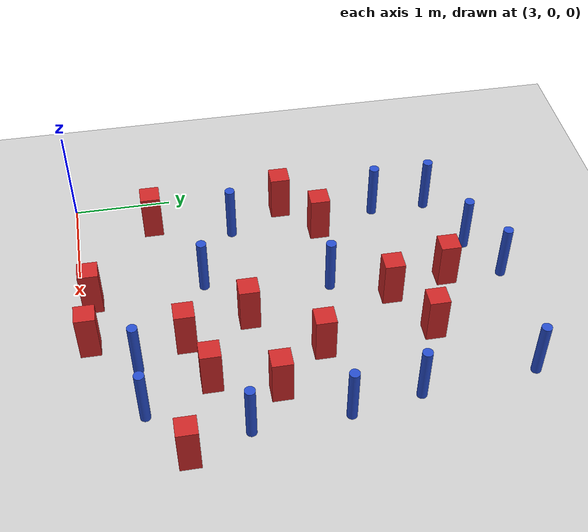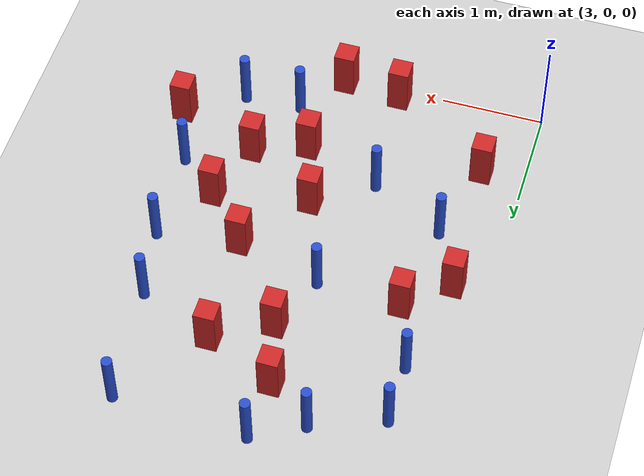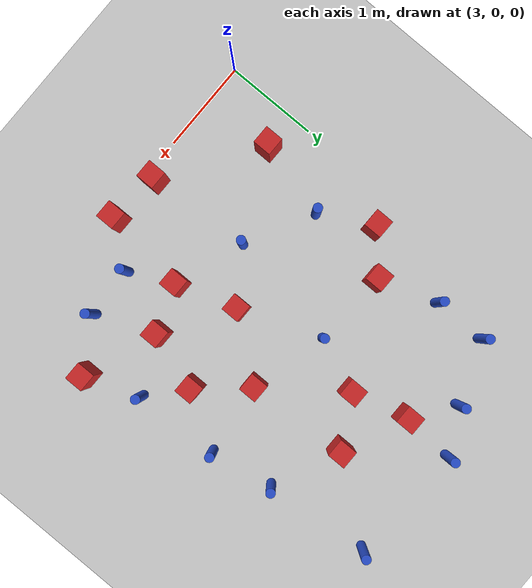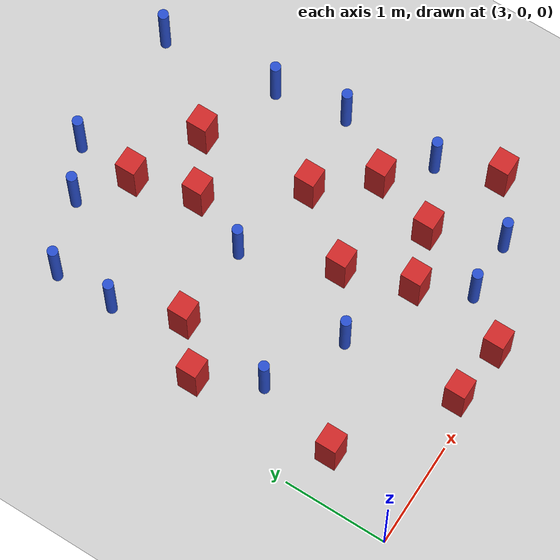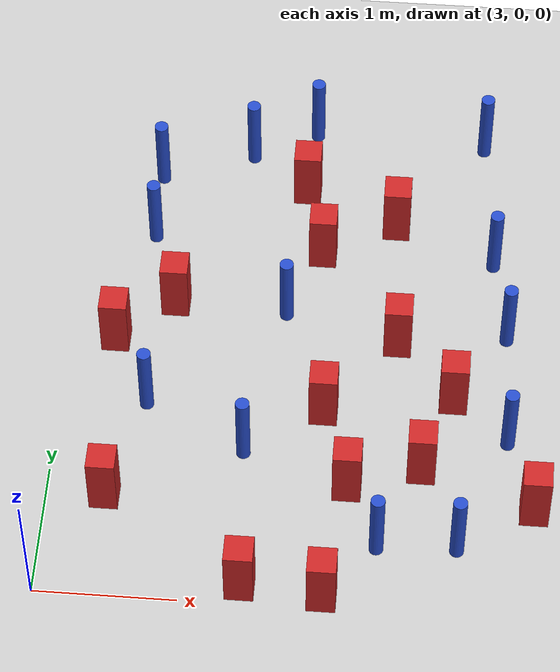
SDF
<sdf version="1.6">
 <world name="default">
  <model name="ground_plane">
   <static>1</static>
   <link name="link">
    <collision name="collision">
     <geometry><plane><normal>0 0 1</normal><size>100 100</size></plane></geometry>
     <surface><friction><ode><mu>100</mu><mu2>50</mu2></ode></friction></surface>
    </collision>
    <visual name="visual">
     <cast_shadows>0</cast_shadows>
     <geometry><plane><normal>0 0 1</normal><size>100 100</size></plane></geometry>
     <material>
      <ambient>1.0 1.0 1.0 1.0</ambient>
      <diffuse>0.8 0.8 0.8 1.0</diffuse>
      <specular>0.01 0.01 0.01 1.000000</specular>
     </material>
    </visual>
   </link>
  </model>
  <model name="square_post_obstacle2">
   <static>true</static>
   <pose>4.97843061873 0.0813036156033 1.91545236811e-07 -7.35059704564e-06 1.12565212e-07 2.39332434364e-05</pose>
   <link name="link">
    <pose>0 0 0.25 0 -0 0</pose>
    <inertial>
     <mass>100</mass>
     <inertia>
      <ixx>0.166667</ixx>
      <ixy>0</ixy>
      <ixz>0</ixz>
      <iyy>0.166667</iyy>
      <iyz>0</iyz>
      <izz>0.166667</izz>
     </inertia>
    </inertial>
    <collision name="collision"><geometry><box><size>.2 .2 .5</size></box></geometry></collision>
    <visual name="visual">
     <geometry><box><size>.2 .2 .5</size></box></geometry>
     <material>
      <script><name>Gazebo/Red</name><uri>file://media/materials/scripts/gazebo.material</uri></script>
     </material>
    </visual>
   </link>
  </model>
  <model name="square_post_obstacle5">
   <static>true</static>
   <pose>4.78544874691 3.06390255872 1.91545236811e-07 -7.35059704564e-06 1.12565212e-07 2.39332434364e-05</pose>
   <link name="link">
    <pose>0 0 0.25 0 -0 0</pose>
    <inertial>
     <mass>100</mass>
     <inertia>
      <ixx>0.166667</ixx>
      <ixy>0</ixy>
      <ixz>0</ixz>
      <iyy>0.166667</iyy>
      <iyz>0</iyz>
      <izz>0.166667</izz>
     </inertia>
    </inertial>
    <collision name="collision"><geometry><box><size>.2 .2 .5</size></box></geometry></collision>
    <visual name="visual">
     <geometry><box><size>.2 .2 .5</size></box></geometry>
     <material>
      <script><name>Gazebo/Red</name><uri>file://media/materials/scripts/gazebo.material</uri></script>
     </material>
    </visual>
   </link>
  </model>
  <model name="square_post_obstacle11">
   <static>true</static>
   <pose>4.62874711738 3.66737557755 1.91545236811e-07 -7.35059704564e-06 1.12565212e-07 2.39332434364e-05</pose>
   <link name="link">
    <pose>0 0 0.25 0 -0 0</pose>
    <inertial>
     <mass>100</mass>
     <inertia>
      <ixx>0.166667</ixx>
      <ixy>0</ixy>
      <ixz>0</ixz>
      <iyy>0.166667</iyy>
      <iyz>0</iyz>
      <izz>0.166667</izz>
     </inertia>
    </inertial>
    <collision name="collision"><geometry><box><size>.2 .2 .5</size></box></geometry></collision>
    <visual name="visual">
     <geometry><box><size>.2 .2 .5</size></box></geometry>
     <material>
      <script><name>Gazebo/Red</name><uri>file://media/materials/scripts/gazebo.material</uri></script>
     </material>
    </visual>
   </link>
  </model>
  <model name="square_post_obstacle13">
   <static>true</static>
   <pose>3.41197336241 0.803505202725 1.91545236811e-07 -7.35059704564e-06 1.12565212e-07 2.39332434364e-05</pose>
   <link name="link">
    <pose>0 0 0.25 0 -0 0</pose>
    <inertial>
     <mass>100</mass>
     <inertia>
      <ixx>0.166667</ixx>
      <ixy>0</ixy>
      <ixz>0</ixz>
      <iyy>0.166667</iyy>
      <iyz>0</iyz>
      <izz>0.166667</izz>
     </inertia>
    </inertial>
    <collision name="collision"><geometry><box><size>.2 .2 .5</size></box></geometry></collision>
    <visual name="visual">
     <geometry><box><size>.2 .2 .5</size></box></geometry>
     <material>
      <script><name>Gazebo/Red</name><uri>file://media/materials/scripts/gazebo.material</uri></script>
     </material>
    </visual>
   </link>
  </model>
  <model name="pole_obstacle11">
   <static>true</static>
   <pose>4.66672874575 4.24998226761 7.38925637345e-09 -8.47170692796e-08 1.24976764786e-08 -1.74513093032e-07</pose>
   <link name="link">
    <pose>0 0 0.3 0 -0 0</pose>
    <inertial>
     <mass>1</mass>
     <inertia><ixx>0.145833</ixx><ixy>0</ixy><ixz>0</ixz><iyy>0.145833</iyy><iyz>0</iyz><izz>0.125</izz></inertia>
    </inertial>
    <collision name="collision">
     <geometry><cylinder><radius>0.05</radius><length>.6</length></cylinder></geometry>
    </collision>
    <visual name="visual">
     <geometry><cylinder><radius>0.05</radius><length>.6</length></cylinder></geometry>
     <material>
      <script><name>Gazebo/Blue</name><uri>file://media/materials/scripts/gazebo.material</uri></script>
     </material>
    </visual>
   </link>
  </model>
  <model name="pole_obstacle16">
   <static>true</static>
   <pose>5.32530784712 0.512092926045 7.38925637345e-09 -8.471706928e-08 1.24976765164e-08 -1.74513093012e-07</pose>
   <link name="link">
    <pose>0 0 0.3 0 -0 0</pose>
    <inertial>
     <mass>1</mass>
     <inertia><ixx>0.145833</ixx><ixy>0</ixy><ixz>0</ixz><iyy>0.145833</iyy><iyz>0</iyz><izz>0.125</izz></inertia>
    </inertial>
    <collision name="collision">
     <geometry><cylinder><radius>0.05</radius><length>.6</length></cylinder></geometry>
    </collision>
    <visual name="visual">
     <geometry><cylinder><radius>0.05</radius><length>.6</length></cylinder></geometry>
     <material>
      <script><name>Gazebo/Blue</name><uri>file://media/materials/scripts/gazebo.material</uri></script>
     </material>
    </visual>
   </link>
  </model>
  <model name="pole_obstacle45">
   <static>true</static>
   <pose>4.34522546068 1.24364782961 7.38925637345e-09 -8.471706928e-08 1.24976765134e-08 -1.74513093015e-07</pose>
   <link name="link">
    <pose>0 0 0.3 0 -0 0</pose>
    <inertial>
     <mass>1</mass>
     <inertia><ixx>0.145833</ixx><ixy>0</ixy><ixz>0</ixz><iyy>0.145833</iyy><iyz>0</iyz><izz>0.125</izz></inertia>
    </inertial>
    <collision name="collision">
     <geometry><cylinder><radius>0.05</radius><length>.6</length></cylinder></geometry>
    </collision>
    <visual name="visual">
     <geometry><cylinder><radius>0.05</radius><length>.6</length></cylinder></geometry>
     <material>
      <script><name>Gazebo/Blue</name><uri>file://media/materials/scripts/gazebo.material</uri></script>
     </material>
    </visual>
   </link>
  </model>
  <model name="pole_obstacle47">
   <static>true</static>
   <pose>5.8794570184 0.53590512169 7.38925637345e-09 -8.471706928e-08 1.24976765164e-08 -1.74513093012e-07</pose>
   <link name="link">
    <pose>0 0 0.3 0 -0 0</pose>
    <inertial>
     <mass>1</mass>
     <inertia><ixx>0.145833</ixx><ixy>0</ixy><ixz>0</ixz><iyy>0.145833</iyy><iyz>0</iyz><izz>0.125</izz></inertia>
    </inertial>
    <collision name="collision">
     <geometry><cylinder><radius>0.05</radius><length>.6</length></cylinder></geometry>
    </collision>
    <visual name="visual">
     <geometry><cylinder><radius>0.05</radius><length>.6</length></cylinder></geometry>
     <material>
      <script><name>Gazebo/Blue</name><uri>file://media/materials/scripts/gazebo.material</uri></script>
     </material>
    </visual>
   </link>
  </model>
  <model name="square_post_obstacle57">
   <static>true</static>
   <pose>6.40279987753 0.882276432792 1.91545236811e-07 -7.35059704564e-06 1.12565212e-07 2.39332434364e-05</pose>
   <link name="link">
    <pose>0 0 0.25 0 -0 0</pose>
    <inertial>
     <mass>100</mass>
     <inertia>
      <ixx>0.166667</ixx>
      <ixy>0</ixy>
      <ixz>0</ixz>
      <iyy>0.166667</iyy>
      <iyz>0</iyz>
      <izz>0.166667</izz>
     </inertia>
    </inertial>
    <collision name="collision"><geometry><box><size>.2 .2 .5</size></box></geometry></collision>
    <visual name="visual">
     <geometry><box><size>.2 .2 .5</size></box></geometry>
     <material>
      <script><name>Gazebo/Red</name><uri>file://media/materials/scripts/gazebo.material</uri></script>
     </material>
    </visual>
   </link>
  </model>
  <model name="pole_obstacle74">
   <static>true</static>
   <pose>3.52438051073 3.15807907708 7.38925637345e-09 -8.47170692798e-08 1.24976764939e-08 -1.74513093025e-07</pose>
   <link name="link">
    <pose>0 0 0.3 0 -0 0</pose>
    <inertial>
     <mass>1</mass>
     <inertia><ixx>0.145833</ixx><ixy>0</ixy><ixz>0</ixz><iyy>0.145833</iyy><iyz>0</iyz><izz>0.125</izz></inertia>
    </inertial>
    <collision name="collision">
     <geometry><cylinder><radius>0.05</radius><length>.6</length></cylinder></geometry>
    </collision>
    <visual name="visual">
     <geometry><cylinder><radius>0.05</radius><length>.6</length></cylinder></geometry>
     <material>
      <script><name>Gazebo/Blue</name><uri>file://media/materials/scripts/gazebo.material</uri></script>
     </material>
    </visual>
   </link>
  </model>
  <model name="pole_obstacle79">
   <static>true</static>
   <pose>4.55651429167 2.49267676649 7.38925637345e-09 -8.47170692798e-08 1.24976764937e-08 -1.74513093023e-07</pose>
   <link name="link">
    <pose>0 0 0.3 0 -0 0</pose>
    <inertial>
     <mass>1</mass>
     <inertia><ixx>0.145833</ixx><ixy>0</ixy><ixz>0</ixz><iyy>0.145833</iyy><iyz>0</iyz><izz>0.125</izz></inertia>
    </inertial>
    <collision name="collision">
     <geometry><cylinder><radius>0.05</radius><length>.6</length></cylinder></geometry>
    </collision>
    <visual name="visual">
     <geometry><cylinder><radius>0.05</radius><length>.6</length></cylinder></geometry>
     <material>
      <script><name>Gazebo/Blue</name><uri>file://media/materials/scripts/gazebo.material</uri></script>
     </material>
    </visual>
   </link>
  </model>
  <model name="square_post_obstacle84">
   <static>true</static>
   <pose>4.885762861 1.62590233051 1.91545236811e-07 -7.35059704564e-06 1.12565212e-07 2.39332434364e-05</pose>
   <link name="link">
    <pose>0 0 0.25 0 -0 0</pose>
    <inertial>
     <mass>100</mass>
     <inertia>
      <ixx>0.166667</ixx>
      <ixy>0</ixy>
      <ixz>0</ixz>
      <iyy>0.166667</iyy>
      <iyz>0</iyz>
      <izz>0.166667</izz>
     </inertia>
    </inertial>
    <collision name="collision"><geometry><box><size>.2 .2 .5</size></box></geometry></collision>
    <visual name="visual">
     <geometry><box><size>.2 .2 .5</size></box></geometry>
     <material>
      <script><name>Gazebo/Red</name><uri>file://media/materials/scripts/gazebo.material</uri></script>
     </material>
    </visual>
   </link>
  </model>
  <model name="square_post_obstacle89">
   <static>true</static>
   <pose>4.41641915639 0.129336557298 1.91545236811e-07 -7.35059704564e-06 1.12565212e-07 2.39332434364e-05</pose>
   <link name="link">
    <pose>0 0 0.25 0 -0 0</pose>
    <inertial>
     <mass>100</mass>
     <inertia>
      <ixx>0.166667</ixx>
      <ixy>0</ixy>
      <ixz>0</ixz>
      <iyy>0.166667</iyy>
      <iyz>0</iyz>
      <izz>0.166667</izz>
     </inertia>
    </inertial>
    <collision name="collision"><geometry><box><size>.2 .2 .5</size></box></geometry></collision>
    <visual name="visual">
     <geometry><box><size>.2 .2 .5</size></box></geometry>
     <material>
      <script><name>Gazebo/Red</name><uri>file://media/materials/scripts/gazebo.material</uri></script>
     </material>
    </visual>
   </link>
  </model>
  <model name="square_post_obstacle110">
   <static>true</static>
   <pose>5.3174819855 3.363539042 1.91545236811e-07 -7.35059704564e-06 1.12565212e-07 2.39332434364e-05</pose>
   <link name="link">
    <pose>0 0 0.25 0 -0 0</pose>
    <inertial>
     <mass>100</mass>
     <inertia>
      <ixx>0.166667</ixx>
      <ixy>0</ixy>
      <ixz>0</ixz>
      <iyy>0.166667</iyy>
      <iyz>0</iyz>
      <izz>0.166667</izz>
     </inertia>
    </inertial>
    <collision name="collision"><geometry><box><size>.2 .2 .5</size></box></geometry></collision>
    <visual name="visual">
     <geometry><box><size>.2 .2 .5</size></box></geometry>
     <material>
      <script><name>Gazebo/Red</name><uri>file://media/materials/scripts/gazebo.material</uri></script>
     </material>
    </visual>
   </link>
  </model>
  <model name="pole_obstacle122">
   <static>true</static>
   <pose>3.52186709226 3.73721494103 7.38925637345e-09 -8.47170692798e-08 1.24976764939e-08 -1.74513093025e-07</pose>
   <link name="link">
    <pose>0 0 0.3 0 -0 0</pose>
    <inertial>
     <mass>1</mass>
     <inertia><ixx>0.145833</ixx><ixy>0</ixy><ixz>0</ixz><iyy>0.145833</iyy><iyz>0</iyz><izz>0.125</izz></inertia>
    </inertial>
    <collision name="collision">
     <geometry><cylinder><radius>0.05</radius><length>.6</length></cylinder></geometry>
    </collision>
    <visual name="visual">
     <geometry><cylinder><radius>0.05</radius><length>.6</length></cylinder></geometry>
     <material>
      <script><name>Gazebo/Blue</name><uri>file://media/materials/scripts/gazebo.material</uri></script>
     </material>
    </visual>
   </link>
  </model>
  <model name="pole_obstacle125">
   <static>true</static>
   <pose>5.95000407138 4.18772665111 7.38925637345e-09 -8.47170692796e-08 1.24976764786e-08 -1.74513093032e-07</pose>
   <link name="link">
    <pose>0 0 0.3 0 -0 0</pose>
    <inertial>
     <mass>1</mass>
     <inertia><ixx>0.145833</ixx><ixy>0</ixy><ixz>0</ixz><iyy>0.145833</iyy><iyz>0</iyz><izz>0.125</izz></inertia>
    </inertial>
    <collision name="collision">
     <geometry><cylinder><radius>0.05</radius><length>.6</length></cylinder></geometry>
    </collision>
    <visual name="visual">
     <geometry><cylinder><radius>0.05</radius><length>.6</length></cylinder></geometry>
     <material>
      <script><name>Gazebo/Blue</name><uri>file://media/materials/scripts/gazebo.material</uri></script>
     </material>
    </visual>
   </link>
  </model>
  <model name="square_post_obstacle122">
   <static>true</static>
   <pose>5.80551034819 1.7900023004 1.91545236811e-07 -7.35059704564e-06 1.12565212e-07 2.39332434364e-05</pose>
   <link name="link">
    <pose>0 0 0.25 0 -0 0</pose>
    <inertial>
     <mass>100</mass>
     <inertia>
      <ixx>0.166667</ixx>
      <ixy>0</ixy>
      <ixz>0</ixz>
      <iyy>0.166667</iyy>
      <iyz>0</iyz>
      <izz>0.166667</izz>
     </inertia>
    </inertial>
    <collision name="collision"><geometry><box><size>.2 .2 .5</size></box></geometry></collision>
    <visual name="visual">
     <geometry><box><size>.2 .2 .5</size></box></geometry>
     <material>
      <script><name>Gazebo/Red</name><uri>file://media/materials/scripts/gazebo.material</uri></script>
     </material>
    </visual>
   </link>
  </model>
  <model name="square_post_obstacle133">
   <static>true</static>
   <pose>5.38206461041 2.26986010762 1.91545236811e-07 -7.35059704564e-06 1.12565212e-07 2.39332434364e-05</pose>
   <link name="link">
    <pose>0 0 0.25 0 -0 0</pose>
    <inertial>
     <mass>100</mass>
     <inertia>
      <ixx>0.166667</ixx>
      <ixy>0</ixy>
      <ixz>0</ixz>
      <iyy>0.166667</iyy>
      <iyz>0</iyz>
      <izz>0.166667</izz>
     </inertia>
    </inertial>
    <collision name="collision"><geometry><box><size>.2 .2 .5</size></box></geometry></collision>
    <visual name="visual">
     <geometry><box><size>.2 .2 .5</size></box></geometry>
     <material>
      <script><name>Gazebo/Red</name><uri>file://media/materials/scripts/gazebo.material</uri></script>
     </material>
    </visual>
   </link>
  </model>
  <model name="square_post_obstacle134">
   <static>true</static>
   <pose>3.73972532683 2.52781359436 1.91545236811e-07 -7.35059704564e-06 1.12565212e-07 2.39332434364e-05</pose>
   <link name="link">
    <pose>0 0 0.25 0 -0 0</pose>
    <inertial>
     <mass>100</mass>
     <inertia>
      <ixx>0.166667</ixx>
      <ixy>0</ixy>
      <ixz>0</ixz>
      <iyy>0.166667</iyy>
      <iyz>0</iyz>
      <izz>0.166667</izz>
     </inertia>
    </inertial>
    <collision name="collision"><geometry><box><size>.2 .2 .5</size></box></geometry></collision>
    <visual name="visual">
     <geometry><box><size>.2 .2 .5</size></box></geometry>
     <material>
      <script><name>Gazebo/Red</name><uri>file://media/materials/scripts/gazebo.material</uri></script>
     </material>
    </visual>
   </link>
  </model>
  <model name="pole_obstacle145">
   <static>true</static>
   <pose>6.20502207289 1.45493833761 7.38925637345e-09 -8.471706928e-08 1.24976765134e-08 -1.74513093015e-07</pose>
   <link name="link">
    <pose>0 0 0.3 0 -0 0</pose>
    <inertial>
     <mass>1</mass>
     <inertia><ixx>0.145833</ixx><ixy>0</ixy><ixz>0</ixz><iyy>0.145833</iyy><iyz>0</iyz><izz>0.125</izz></inertia>
    </inertial>
    <collision name="collision">
     <geometry><cylinder><radius>0.05</radius><length>.6</length></cylinder></geometry>
    </collision>
    <visual name="visual">
     <geometry><cylinder><radius>0.05</radius><length>.6</length></cylinder></geometry>
     <material>
      <script><name>Gazebo/Blue</name><uri>file://media/materials/scripts/gazebo.material</uri></script>
     </material>
    </visual>
   </link>
  </model>
  <model name="pole_obstacle156">
   <static>true</static>
   <pose>6.17232067592 2.37460427916 7.38925637345e-09 -8.47170692798e-08 1.24976764937e-08 -1.74513093023e-07</pose>
   <link name="link">
    <pose>0 0 0.3 0 -0 0</pose>
    <inertial>
     <mass>1</mass>
     <inertia><ixx>0.145833</ixx><ixy>0</ixy><ixz>0</ixz><iyy>0.145833</iyy><iyz>0</iyz><izz>0.125</izz></inertia>
    </inertial>
    <collision name="collision">
     <geometry><cylinder><radius>0.05</radius><length>.6</length></cylinder></geometry>
    </collision>
    <visual name="visual">
     <geometry><cylinder><radius>0.05</radius><length>.6</length></cylinder></geometry>
     <material>
      <script><name>Gazebo/Blue</name><uri>file://media/materials/scripts/gazebo.material</uri></script>
     </material>
    </visual>
   </link>
  </model>
  <model name="pole_obstacle158">
   <static>true</static>
   <pose>6.0545215018 3.05642088528 7.38925637345e-09 -8.47170692798e-08 1.24976764937e-08 -1.74513093023e-07</pose>
   <link name="link">
    <pose>0 0 0.3 0 -0 0</pose>
    <inertial>
     <mass>1</mass>
     <inertia><ixx>0.145833</ixx><ixy>0</ixy><ixz>0</ixz><iyy>0.145833</iyy><iyz>0</iyz><izz>0.125</izz></inertia>
    </inertial>
    <collision name="collision">
     <geometry><cylinder><radius>0.05</radius><length>.6</length></cylinder></geometry>
    </collision>
    <visual name="visual">
     <geometry><cylinder><radius>0.05</radius><length>.6</length></cylinder></geometry>
     <material>
      <script><name>Gazebo/Blue</name><uri>file://media/materials/scripts/gazebo.material</uri></script>
     </material>
    </visual>
   </link>
  </model>
  <model name="pole_obstacle182">
   <static>true</static>
   <pose>4.19428142791 3.99405677166 7.38925637345e-09 -8.47170692798e-08 1.2497676496e-08 -1.74513093023e-07</pose>
   <link name="link">
    <pose>0 0 0.3 0 -0 0</pose>
    <inertial>
     <mass>1</mass>
     <inertia><ixx>0.145833</ixx><ixy>0</ixy><ixz>0</ixz><iyy>0.145833</iyy><iyz>0</iyz><izz>0.125</izz></inertia>
    </inertial>
    <collision name="collision">
     <geometry><cylinder><radius>0.05</radius><length>.6</length></cylinder></geometry>
    </collision>
    <visual name="visual">
     <geometry><cylinder><radius>0.05</radius><length>.6</length></cylinder></geometry>
     <material>
      <script><name>Gazebo/Blue</name><uri>file://media/materials/scripts/gazebo.material</uri></script>
     </material>
    </visual>
   </link>
  </model>
  <model name="square_post_obstacle181">
   <static>true</static>
   <pose>3.33689042522 2.17345991507 1.91545236811e-07 -7.35059704564e-06 1.12565212e-07 2.39332434364e-05</pose>
   <link name="link">
    <pose>0 0 0.25 0 -0 0</pose>
    <inertial>
     <mass>100</mass>
     <inertia>
      <ixx>0.166667</ixx>
      <ixy>0</ixy>
      <ixz>0</ixz>
      <iyy>0.166667</iyy>
      <iyz>0</iyz>
      <izz>0.166667</izz>
     </inertia>
    </inertial>
    <collision name="collision"><geometry><box><size>.2 .2 .5</size></box></geometry></collision>
    <visual name="visual">
     <geometry><box><size>.2 .2 .5</size></box></geometry>
     <material>
      <script><name>Gazebo/Red</name><uri>file://media/materials/scripts/gazebo.material</uri></script>
     </material>
    </visual>
   </link>
  </model>
  <model name="square_post_obstacle193">
   <static>true</static>
   <pose>5.60456455021 1.17163423213 1.91545236811e-07 -7.35059704564e-06 1.12565212e-07 2.39332434364e-05</pose>
   <link name="link">
    <pose>0 0 0.25 0 -0 0</pose>
    <inertial>
     <mass>100</mass>
     <inertia>
      <ixx>0.166667</ixx>
      <ixy>0</ixy>
      <ixz>0</ixz>
      <iyy>0.166667</iyy>
      <iyz>0</iyz>
      <izz>0.166667</izz>
     </inertia>
    </inertial>
    <collision name="collision"><geometry><box><size>.2 .2 .5</size></box></geometry></collision>
    <visual name="visual">
     <geometry><box><size>.2 .2 .5</size></box></geometry>
     <material>
      <script><name>Gazebo/Red</name><uri>file://media/materials/scripts/gazebo.material</uri></script>
     </material>
    </visual>
   </link>
  </model>
  <model name="square_post_obstacle203">
   <static>true</static>
   <pose>5.09327681432 0.988550024898 1.91545236811e-07 -7.35059704564e-06 1.12565212e-07 2.39332434364e-05</pose>
   <link name="link">
    <pose>0 0 0.25 0 -0 0</pose>
    <inertial>
     <mass>100</mass>
     <inertia>
      <ixx>0.166667</ixx>
      <ixy>0</ixy>
      <ixz>0</ixz>
      <iyy>0.166667</iyy>
      <iyz>0</iyz>
      <izz>0.166667</izz>
     </inertia>
    </inertial>
    <collision name="collision"><geometry><box><size>.2 .2 .5</size></box></geometry></collision>
    <visual name="visual">
     <geometry><box><size>.2 .2 .5</size></box></geometry>
     <material>
      <script><name>Gazebo/Red</name><uri>file://media/materials/scripts/gazebo.material</uri></script>
     </material>
    </visual>
   </link>
  </model>
  <model name="pole_obstacle215">
   <static>true</static>
   <pose>3.61925000957 1.61775002078 7.38925637345e-09 -8.471706928e-08 1.24976765152e-08 -1.74513093012e-07</pose>
   <link name="link">
    <pose>0 0 0.3 0 -0 0</pose>
    <inertial>
     <mass>1</mass>
     <inertia><ixx>0.145833</ixx><ixy>0</ixy><ixz>0</ixz><iyy>0.145833</iyy><iyz>0</iyz><izz>0.125</izz></inertia>
    </inertial>
    <collision name="collision">
     <geometry><cylinder><radius>0.05</radius><length>.6</length></cylinder></geometry>
    </collision>
    <visual name="visual">
     <geometry><cylinder><radius>0.05</radius><length>.6</length></cylinder></geometry>
     <material>
      <script><name>Gazebo/Blue</name><uri>file://media/materials/scripts/gazebo.material</uri></script>
     </material>
    </visual>
   </link>
  </model>
 </world>
</sdf>
